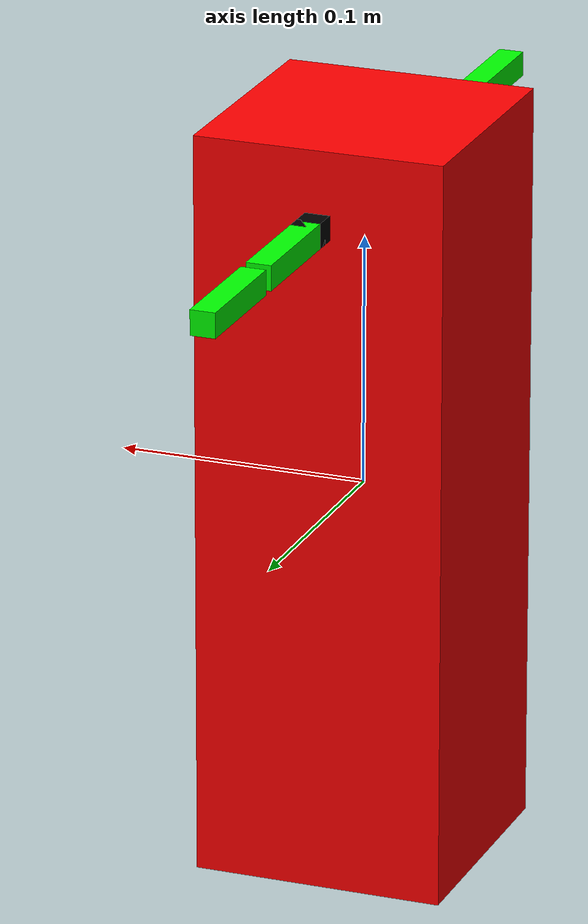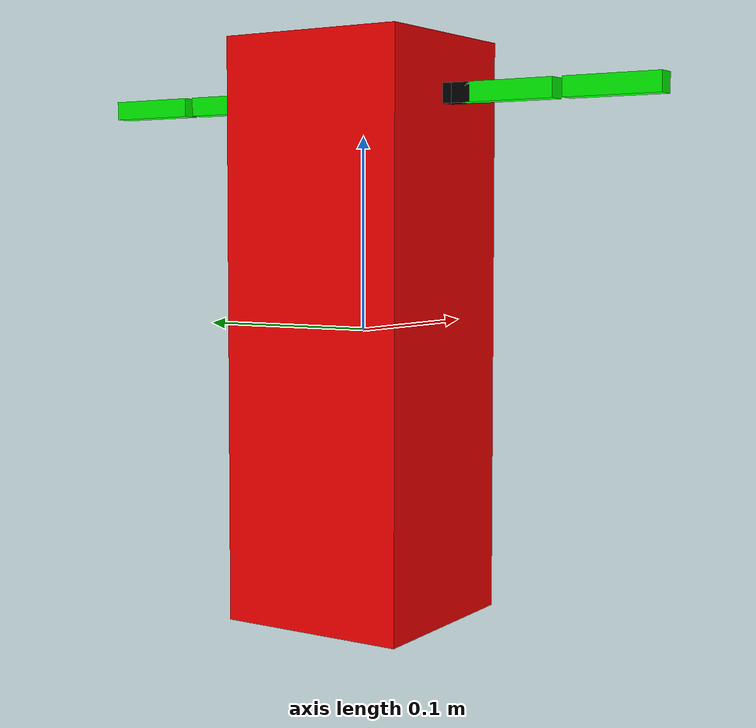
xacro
<?xml version="1.0"?>

<robot name="RepliCare" xmlns:xacro="https://ros.org/wiki/xacro">

	<!-- constants -->
	<xacro:property name="body_length" value="0.1" />
	<xacro:property name="body_width" value="0.1" />
	<xacro:property name="body_height" value="0.3" />
	<xacro:property name="arm_link_length" value="0.01" />
	<xacro:property name="arm_link_width" value="0.01" />
	<xacro:property name="arm_link_height" value="0.05" />
	<xacro:property name="joints_link_length" value="0.01" />
	<xacro:property name="joints_link_width" value="0.01" />
	<xacro:property name="joints_link_height" value="0.01" />
	<xacro:property name="deg_to_rad" value="0.017453292519943295" />

	<!-- macros -->
	<xacro:macro name="make_link" params="name roll:=0 pitch:=0 yaw:=0 xyz">
		<link name="${name}">
			<visual>
				<geometry>
					<box size="${arm_link_length} ${arm_link_width} ${arm_link_height}" />
				</geometry>
				<origin rpy="${roll*deg_to_rad} ${pitch*deg_to_rad} ${yaw*deg_to_rad}" xyz="${xyz}" />
				<material name="green">
					<color rgba="0 1 0 1" />
				</material>
			</visual>
			<collision>
				<geometry>
					<box size="${arm_link_length} ${arm_link_width} ${arm_link_height}" />
				</geometry>
				<origin rpy="${roll*deg_to_rad} ${pitch*deg_to_rad} ${yaw*deg_to_rad}" xyz="${xyz}" />
			</collision>
			<inertial>
				<mass value="0.1" />
				<inertia ixx="1.0" ixy="0.0" ixz="0.0" iyy="1.0" iyz="0.0" izz="1.0" />
			</inertial>
		</link>
	</xacro:macro>

	<xacro:macro name="make_joint" params="name parent child xyz roll:=0 pitch:=0 yaw:=0 axis lower upper">
		<joint name="${name}" type="revolute">
			<parent link="${parent}" />
			<child link="${child}" />
			<origin xyz="${xyz}" />
			<axis xyz="${axis}" />
			<limit effort="30" velocity="1.0" lower="${lower*deg_to_rad}" upper="${upper*deg_to_rad}" />
		</joint>
	</xacro:macro>

	<xacro:macro name="make_joints_link" params="name xyz">
		<link name="${name}">
			<visual>
				<geometry>
					<box size="${joints_link_length} ${joints_link_width} ${joints_link_height}" />
				</geometry>
				<origin rpy="0 0 0" xyz="${xyz}" />
				<material name="transparent">
					<color rgba="0 0 0 0" />
				</material>
			</visual>
			<collision>
				<geometry>
					<box size="${joints_link_length} ${joints_link_width} ${joints_link_height}" />
				</geometry>
				<origin rpy="0 0 0" xyz="${xyz}" />
			</collision>
			<inertial>
				<mass value="0.01" />
				<inertia ixx="1.0" ixy="0.0" ixz="0.0" iyy="1.0" iyz="0.0" izz="1.0" />
			</inertial>
		</link>
	</xacro:macro>

	<xacro:macro name="transmission_block" params="joint_name">
		<transmission name="tran1">
			<type>transmission_interface/SimpleTransmission</type>
			<joint  name="${joint_name}">
				<hardwareInterface>hardware_interface/PositionJointInterface</hardwareInterface>
			</joint>
			<actuator name="motor1">
				<hardwareInterface>hardware_interface/PositionJointInterface</hardwareInterface>
				<mechanicalReduction>1</mechanicalReduction>
			</actuator>
		</transmission>
	</xacro:macro>

	<!-- model definition -->
	<link name="body">
		<visual>
			<geometry>
				<box size="${body_length} ${body_width} ${body_height}" />
			</geometry>
			<origin rpy="0 0 0" xyz="0 0 0" />
			<material name="red">
				<color rgba="1 0 0 1" />
			</material>
		</visual>
		<collision>
			<geometry>
				<box size="${body_length} ${body_width} ${body_height}" />
			</geometry>
			<origin rpy="0 0 0" xyz="0 0 0" />
		</collision>
		<inertial>
			<mass value="1.0" />
			<inertia ixx="1.0" ixy="0.0" ixz="0.0" iyy="1.0" iyz="0.0" izz="1.0" />
		</inertial>
	</link>

	<!-- left arm -->
	<xacro:make_joint name="left_shoulder_yaw" parent="body" child="left_shoulder_link_1" xyz="0 ${(body_width/2) + (arm_link_width/2)} ${0.8*(body_height/2)}" axis="0 0 1" upper="90" lower="-90" />
	<xacro:make_joints_link name="left_shoulder_link_1" xyz="0 ${joints_link_width/2} 0" />
	<xacro:make_joint name="left_shoulder_pitch" parent="left_shoulder_link_1" child="left_shoulder_link_2" xyz="0 0 0" axis="0 1 0" upper="90" lower="-90" />
	<xacro:make_joints_link name="left_shoulder_link_2" xyz="0 0 0" />
	<xacro:make_joint name="left_shoulder_roll" parent="left_shoulder_link_2" child="left_upper_arm" xyz="0 ${arm_link_width/2} 0" axis="1 0 0" upper="90" lower="-90" />
	<xacro:make_link name="left_upper_arm" roll="90" xyz="0 ${arm_link_height/2} 0" />
	<xacro:make_joint name="left_elbow" parent="left_upper_arm" child="left_forearm" xyz="0 ${arm_link_height + (arm_link_width/2)} 0" roll="90" axis="1 0 0" upper="135" lower="-135" />
	<xacro:make_link name="left_forearm" roll="90" xyz="0 ${(arm_link_height/2)} 0" />

	<!-- right arm -->
	<xacro:make_joint name="right_shoulder_yaw" parent="body" child="right_shoulder_link_1" xyz="0 -${(body_width/2) + (arm_link_width/2)} ${0.8*(body_height/2)}" axis="0 0 1" upper="90" lower="-90" />
	<xacro:make_joints_link name="right_shoulder_link_1" xyz="0 -${joints_link_width/2} 0" />
	<xacro:make_joint name="right_shoulder_pitch" parent="right_shoulder_link_1" child="right_shoulder_link_2" xyz="0 0 0" axis="0 1 0" upper="90" lower="-90" />
	<xacro:make_joints_link name="right_shoulder_link_2" xyz="0 0 0" />
	<xacro:make_joint name="right_shoulder_roll" parent="right_shoulder_link_2" child="right_upper_arm" xyz="0 -${arm_link_width/2} 0" axis="1 0 0" upper="90" lower="-90" />
	<xacro:make_link name="right_upper_arm" roll="-90" xyz="0 -${arm_link_height/2} 0" />
	<xacro:make_joint name="right_elbow" parent="right_upper_arm" child="right_forearm" xyz="0 -${arm_link_height+(arm_link_width/2)} 0" roll="-90" axis="1 0 0" upper="135" lower="-135" />
	<xacro:make_link name="right_forearm" roll="-90" xyz="0 -${arm_link_height/2} 0" />

	<!-- adding transmission to joints -->
	<xacro:transmission_block joint_name="left_shoulder_yaw" />
	<xacro:transmission_block joint_name="left_shoulder_pitch" />
	<xacro:transmission_block joint_name="left_shoulder_roll" />
	<xacro:transmission_block joint_name="left_elbow" />
	<xacro:transmission_block joint_name="right_shoulder_yaw" />
	<xacro:transmission_block joint_name="right_shoulder_pitch" />
	<xacro:transmission_block joint_name="right_shoulder_roll" />
	<xacro:transmission_block joint_name="right_elbow" />

	<!-- ros control plugin -->
	<gazebo>
		<plugin name="gazebo_ros_control" filename="libgazebo_ros_control.so">
			<robotNamespace>/RepliCare</robotNamespace>
		</plugin>
	</gazebo>

</robot>
